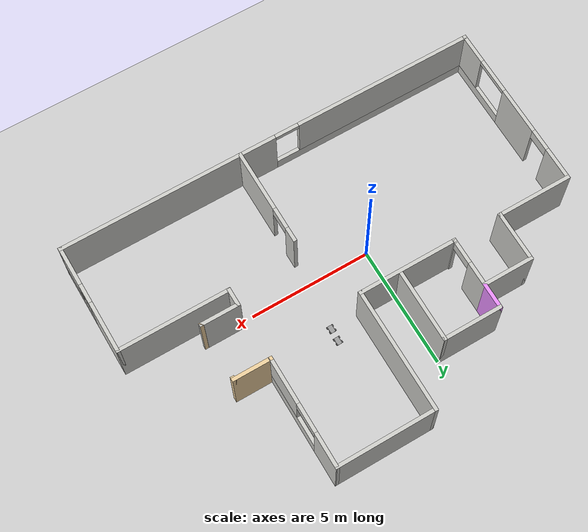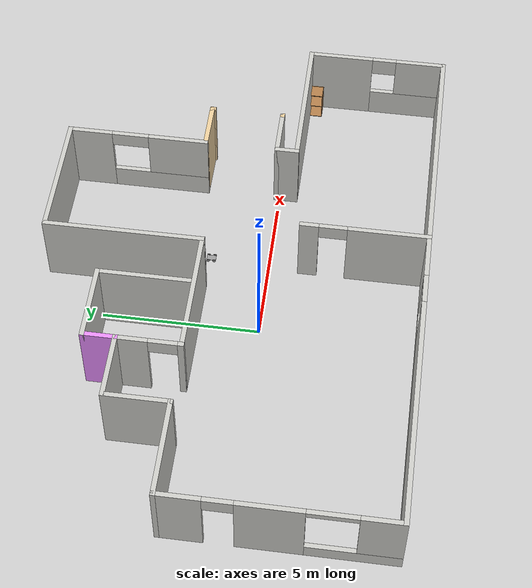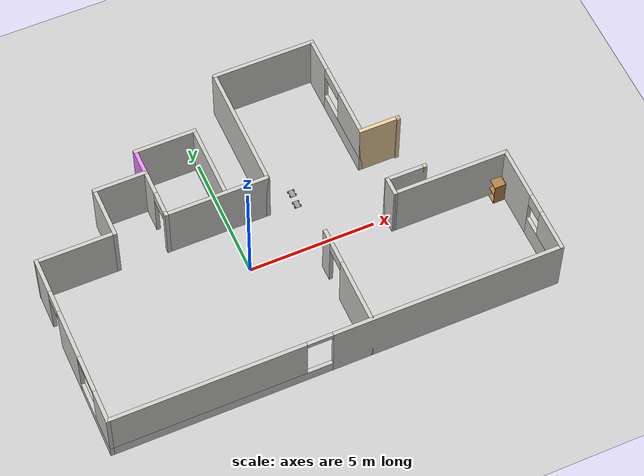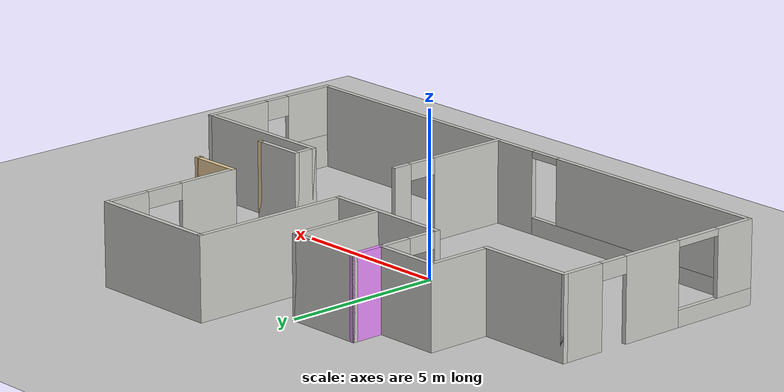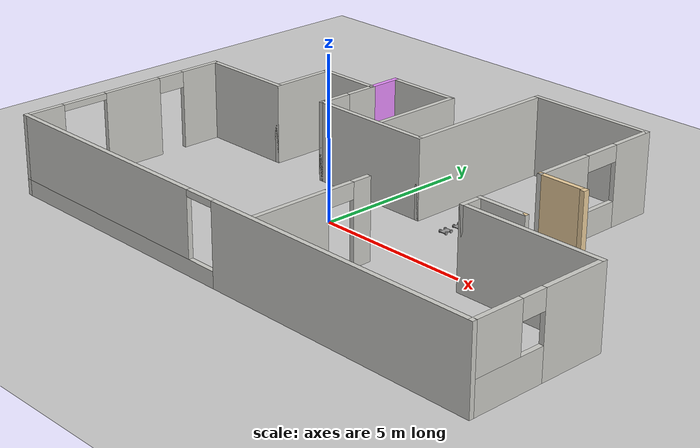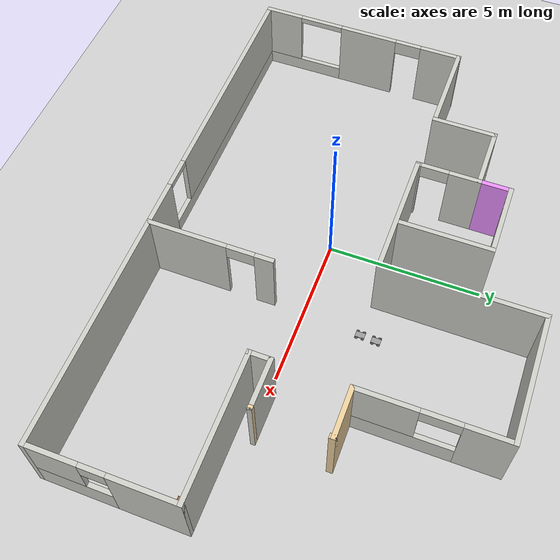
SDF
<sdf version="1.6">
 <world name="default">
  <plugin name="welcome_message" filename="libwelcome_message.so"/>
  <light name="sun" type="directional">
   <pose>0 0 10 0 -0 0</pose>
   <diffuse>0.8 0.8 0.8 1</diffuse>
   <specular>0.2 0.2 0.2 1</specular>
   <attenuation>
    <range>1000</range>
    <constant>0.9</constant>
    <linear>0.01</linear>
    <quadratic>0.001</quadratic>
   </attenuation>
   <direction>-0.5 0.1 -0.9</direction>
  </light>
  <model name="ground_plane">
   <static>1</static>
   <link name="link">
    <collision name="collision">
     <geometry><plane><normal>0 0 1</normal><size>100 100</size></plane></geometry>
     <surface><friction><ode><mu>100</mu><mu2>50</mu2></ode></friction></surface>
    </collision>
    <visual name="visual">
     <cast_shadows>0</cast_shadows>
     <geometry><plane><normal>0 0 1</normal><size>100 100</size></plane></geometry>
     <material>
      <script><uri>file://media/materials/scripts/gazebo.material</uri><name>Gazebo/Grey</name></script>
     </material>
    </visual>
   </link>
  </model>
  <gravity>0 0 -9.8</gravity>
  <magnetic_field>6e-06 2.3e-05 -4.2e-05</magnetic_field>
  <atmosphere type="adiabatic"/>
  <physics name="default_physics" default="0" type="ode">
   <max_step_size>0.001</max_step_size>
   <real_time_factor>1</real_time_factor>
   <real_time_update_rate>1000</real_time_update_rate>
  </physics>
  <scene><ambient>0.4 0.4 0.4 1</ambient><background>0.7 0.7 0.7 1</background><shadows>1</shadows></scene>
  <spherical_coordinates>
   <surface_model>EARTH_WGS84</surface_model>
   <latitude_deg>0</latitude_deg>
   <longitude_deg>0</longitude_deg>
   <elevation>0</elevation>
   <heading_deg>0</heading_deg>
  </spherical_coordinates>
  <model name="model">
   <pose>1.31572 0.98708 0 0 -0 0</pose>
   <link name="Wall_0">
    <collision name="Wall_0_Collision">
     <geometry><box><size>3.15 0.15 2.5</size></box></geometry>
     <pose>0 0 1.25 0 -0 0</pose>
    </collision>
    <visual name="Wall_0_Visual">
     <pose>0 0 1.25 0 -0 0</pose>
     <geometry><box><size>3.15 0.15 2.5</size></box></geometry>
     <material>
      <script><uri>file://media/materials/scripts/gazebo.material</uri><name>Gazebo/CeilingTiled</name></script>
      <ambient>0.921569 0.807843 0.615686 1</ambient>
     </material>
     <meta><layer>0</layer></meta>
    </visual>
    <pose>-7.25 1 0 0 -0 0</pose>
   </link>
   <link name="Wall_16">
    <collision name="Wall_16_Collision">
     <geometry><box><size>2.15 0.15 2.5</size></box></geometry>
     <pose>0 0 1.25 0 -0 0</pose>
    </collision>
    <visual name="Wall_16_Visual">
     <pose>0 0 1.25 0 -0 0</pose>
     <geometry><box><size>2.15 0.15 2.5</size></box></geometry>
     <material>
      <script><uri>file://media/materials/scripts/gazebo.material</uri><name>Gazebo/CeilingTiled</name></script>
      <ambient>0.921569 0.807843 0.615686 1</ambient>
     </material>
     <meta><layer>0</layer></meta>
    </visual>
    <pose>-5.75 2 0 0 -0 1.5708</pose>
   </link>
   <link name="Wall_18">
    <collision name="Wall_18_Collision">
     <geometry><box><size>2.15 0.15 2.5</size></box></geometry>
     <pose>0 0 1.25 0 -0 0</pose>
    </collision>
    <visual name="Wall_18_Visual">
     <pose>0 0 1.25 0 -0 0</pose>
     <geometry><box><size>2.15 0.15 2.5</size></box></geometry>
     <material>
      <script><uri>file://media/materials/scripts/gazebo.material</uri><name>Gazebo/CeilingTiled</name></script>
      <ambient>0.921569 0.807843 0.615686 1</ambient>
     </material>
     <meta><layer>0</layer></meta>
    </visual>
    <pose>-4.75 3 0 0 -0 0</pose>
   </link>
   <link name="Wall_20">
    <pose>-3.75 2 0 0 0 -1.5708</pose>
    <visual name="Wall_20_Visual_0">
     <pose>-0.547542 0 1.25 0 -0 0</pose>
     <geometry><box><size>1.05492 0.15 2.5</size></box></geometry>
     <material>
      <script><uri>file://media/materials/scripts/gazebo.material</uri><name>Gazebo/CeilingTiled</name></script>
      <ambient>0.921569 0.807843 0.615686 1</ambient>
     </material>
     <meta><layer>0</layer></meta>
    </visual>
    <collision name="Wall_20_Collision_0">
     <geometry><box><size>1.05492 0.15 2.5</size></box></geometry>
     <pose>-0.547542 0 1.25 0 -0 0</pose>
    </collision>
    <visual name="Wall_20_Visual_1">
     <pose>0.977458 0 1.25 0 -0 0</pose>
     <geometry><box><size>0.195085 0.15 2.5</size></box></geometry>
     <material>
      <script><uri>file://media/materials/scripts/gazebo.material</uri><name>Gazebo/CeilingTiled</name></script>
      <ambient>0.921569 0.807843 0.615686 1</ambient>
     </material>
     <meta><layer>0</layer></meta>
    </visual>
    <collision name="Wall_20_Collision_1">
     <geometry><box><size>0.195085 0.15 2.5</size></box></geometry>
     <pose>0.977458 0 1.25 0 -0 0</pose>
    </collision>
    <visual name="Wall_20_Visual_2">
     <pose>0.429915 0 2.25 0 -0 0</pose>
     <geometry><box><size>0.9 0.15 0.5</size></box></geometry>
     <material>
      <script><uri>file://media/materials/scripts/gazebo.material</uri><name>Gazebo/CeilingTiled</name></script>
      <ambient>0.921569 0.807843 0.615686 1</ambient>
     </material>
     <meta><layer>0</layer></meta>
    </visual>
    <collision name="Wall_20_Collision_2">
     <geometry><box><size>0.9 0.15 0.5</size></box></geometry>
     <pose>0.429915 0 2.25 0 -0 0</pose>
    </collision>
   </link>
   <link name="Wall_22">
    <collision name="Wall_22_Collision">
     <geometry><box><size>4.15 0.15 2.5</size></box></geometry>
     <pose>0 0 1.25 0 -0 0</pose>
    </collision>
    <visual name="Wall_22_Visual">
     <pose>0 0 1.25 0 -0 0</pose>
     <geometry><box><size>4.15 0.15 2.5</size></box></geometry>
     <material>
      <script><uri>file://media/materials/scripts/gazebo.material</uri><name>Gazebo/CeilingTiled</name></script>
      <ambient>0.921569 0.807843 0.615686 1</ambient>
     </material>
     <meta><layer>0</layer></meta>
    </visual>
    <pose>-1.75 1 0 0 -0 0</pose>
   </link>
   <link name="Wall_24">
    <collision name="Wall_24_Collision">
     <geometry><box><size>5.15 0.15 2.5</size></box></geometry>
     <pose>0 0 1.25 0 -0 0</pose>
    </collision>
    <visual name="Wall_24_Visual">
     <pose>0 0 1.25 0 -0 0</pose>
     <geometry><box><size>5.15 0.15 2.5</size></box></geometry>
     <material>
      <script><uri>file://media/materials/scripts/gazebo.material</uri><name>Gazebo/CeilingTiled</name></script>
      <ambient>0.921569 0.807843 0.615686 1</ambient>
     </material>
     <meta><layer>0</layer></meta>
    </visual>
    <pose>0.25 3.5 0 0 -0 1.5708</pose>
   </link>
   <link name="Wall_26">
    <collision name="Wall_26_Collision">
     <geometry><box><size>4.15 0.15 2.5</size></box></geometry>
     <pose>0 0 1.25 0 -0 0</pose>
    </collision>
    <visual name="Wall_26_Visual">
     <pose>0 0 1.25 0 -0 0</pose>
     <geometry><box><size>4.15 0.15 2.5</size></box></geometry>
     <material>
      <script><uri>file://media/materials/scripts/gazebo.material</uri><name>Gazebo/CeilingTiled</name></script>
      <ambient>0.921569 0.807843 0.615686 1</ambient>
     </material>
     <meta><layer>0</layer></meta>
    </visual>
    <pose>2.25 6 0 0 -0 0</pose>
   </link>
   <link name="Wall_28">
    <pose>4.25 3.75 0 0 0 -1.5708</pose>
    <visual name="Wall_28_Visual_0">
     <pose>-1.5875 0 1.25 0 -0 0</pose>
     <geometry><box><size>1.475 0.15 2.5</size></box></geometry>
     <material>
      <script><uri>file://media/materials/scripts/gazebo.material</uri><name>Gazebo/CeilingTiled</name></script>
      <ambient>0.921569 0.807843 0.615686 1</ambient>
     </material>
     <meta><layer>0</layer></meta>
    </visual>
    <collision name="Wall_28_Collision_0">
     <geometry><box><size>1.475 0.15 2.5</size></box></geometry>
     <pose>-1.5875 0 1.25 0 -0 0</pose>
    </collision>
    <visual name="Wall_28_Visual_1">
     <pose>0.7375 0 0.4 0 -0 0</pose>
     <geometry><box><size>3.175 0.15 0.8</size></box></geometry>
     <material>
      <script><uri>file://media/materials/scripts/gazebo.material</uri><name>Gazebo/CeilingTiled</name></script>
      <ambient>0.921569 0.807843 0.615686 1</ambient>
     </material>
     <meta><layer>0</layer></meta>
    </visual>
    <collision name="Wall_28_Collision_1">
     <geometry><box><size>3.175 0.15 0.8</size></box></geometry>
     <pose>0.7375 0 0.4 0 -0 0</pose>
    </collision>
    <visual name="Wall_28_Visual_2">
     <pose>1.3375 0 1.65 0 -0 0</pose>
     <geometry><box><size>1.975 0.15 1.7</size></box></geometry>
     <material>
      <script><uri>file://media/materials/scripts/gazebo.material</uri><name>Gazebo/CeilingTiled</name></script>
      <ambient>0.921569 0.807843 0.615686 1</ambient>
     </material>
     <meta><layer>0</layer></meta>
    </visual>
    <collision name="Wall_28_Collision_2">
     <geometry><box><size>1.975 0.15 1.7</size></box></geometry>
     <pose>1.3375 0 1.65 0 -0 0</pose>
    </collision>
    <visual name="Wall_28_Visual_3">
     <pose>-0.25 0 2.25 0 -0 0</pose>
     <geometry><box><size>1.2 0.15 0.5</size></box></geometry>
     <material>
      <script><uri>file://media/materials/scripts/gazebo.material</uri><name>Gazebo/CeilingTiled</name></script>
      <ambient>0.921569 0.807843 0.615686 1</ambient>
     </material>
     <meta><layer>0</layer></meta>
    </visual>
    <collision name="Wall_28_Collision_3">
     <geometry><box><size>1.2 0.15 0.5</size></box></geometry>
     <pose>-0.25 0 2.25 0 -0 0</pose>
    </collision>
   </link>
   <link name="Wall_30">
    <collision name="Wall_30_Collision">
     <geometry><box><size>1.65 0.15 2.5</size></box></geometry>
     <pose>0 0 1.25 0 -0 0</pose>
    </collision>
    <visual name="Wall_30_Visual">
     <pose>0 0 1.25 0 -0 0</pose>
     <geometry><box><size>1.65 0.15 2.5</size></box></geometry>
     <material>
      <script><uri>file://media/materials/scripts/gazebo.material</uri><name>Gazebo/Grey</name></script>
      <ambient>0.921569 0.807843 0.615686 1</ambient>
     </material>
     <meta><layer>0</layer></meta>
    </visual>
    <pose>5 1.5 0 0 -0 0</pose>
   </link>
   <link name="Wall_31">
    <pose>5.75 0.325 0 0 0 -1.5708</pose>
    <visual name="Wall_31_Visual_0">
     <pose>-1.15 0 1.25 0 -0 0</pose>
     <geometry><box><size>0.2 0.15 2.5</size></box></geometry>
     <material>
      <script><uri>file://media/materials/scripts/gazebo.material</uri><name>Gazebo/Grey</name></script>
      <ambient>0.921569 0.807843 0.615686 1</ambient>
     </material>
     <meta><layer>0</layer></meta>
    </visual>
    <collision name="Wall_31_Collision_0">
     <geometry><box><size>0.2 0.15 2.5</size></box></geometry>
     <pose>-1.15 0 1.25 0 -0 0</pose>
    </collision>
    <visual name="Wall_31_Visual_1">
     <pose>1.175 0 1.25 0 -0 0</pose>
     <geometry><box><size>0.15 0.15 2.5</size></box></geometry>
     <material>
      <script><uri>file://media/materials/scripts/gazebo.material</uri><name>Gazebo/Grey</name></script>
      <ambient>0.921569 0.807843 0.615686 1</ambient>
     </material>
     <meta><layer>0</layer></meta>
    </visual>
    <collision name="Wall_31_Collision_1">
     <geometry><box><size>0.15 0.15 2.5</size></box></geometry>
     <pose>1.175 0 1.25 0 -0 0</pose>
    </collision>
   </link>
   <link name="Wall_32">
    <collision name="Wall_32_Collision">
     <geometry><box><size>1.65 0.15 2.5</size></box></geometry>
     <pose>0 0 1.25 0 -0 0</pose>
    </collision>
    <visual name="Wall_32_Visual">
     <pose>0 0 1.25 0 -0 0</pose>
     <geometry><box><size>1.65 0.15 2.5</size></box></geometry>
     <material>
      <script><uri>file://media/materials/scripts/gazebo.material</uri><name>Gazebo/CeilingTiled</name></script>
      <ambient>0.921569 0.807843 0.615686 1</ambient>
     </material>
     <meta><layer>0</layer></meta>
    </visual>
    <pose>5 -0.85 0 0 -0 3.14159</pose>
   </link>
   <link name="Wall_34">
    <collision name="Wall_34_Collision">
     <geometry><box><size>0.8 0.15 2.5</size></box></geometry>
     <pose>0 0 1.25 0 -0 0</pose>
    </collision>
    <visual name="Wall_34_Visual">
     <pose>0 0 1.25 0 -0 0</pose>
     <geometry><box><size>0.8 0.15 2.5</size></box></geometry>
     <material>
      <script><uri>file://media/materials/scripts/gazebo.material</uri><name>Gazebo/CeilingTiled</name></script>
      <ambient>0.921569 0.807843 0.615686 1</ambient>
     </material>
     <meta><layer>0</layer></meta>
    </visual>
    <pose>4.25 -1.175 0 0 0 -1.5708</pose>
   </link>
   <link name="Wall_36">
    <collision name="Wall_36_Collision">
     <geometry><box><size>4.65 0.15 2.5</size></box></geometry>
     <pose>0 0 1.25 0 -0 0</pose>
    </collision>
    <visual name="Wall_36_Visual">
     <pose>0 0 1.25 0 -0 0</pose>
     <geometry><box><size>4.65 0.15 2.5</size></box></geometry>
     <material>
      <script><uri>file://media/materials/scripts/gazebo.material</uri><name>Gazebo/CeilingTiled</name></script>
      <ambient>0.921569 0.807843 0.615686 1</ambient>
     </material>
     <meta><layer>0</layer></meta>
    </visual>
    <pose>6.5 -1.5 0 0 -0 0</pose>
   </link>
   <link name="Wall_37">
    <pose>8.75 -3.75 0 0 0 -1.5708</pose>
    <visual name="Wall_37_Visual_0">
     <pose>-1.2375 0 1.25 0 -0 0</pose>
     <geometry><box><size>2.175 0.15 2.5</size></box></geometry>
     <material>
      <script><uri>file://media/materials/scripts/gazebo.material</uri><name>Gazebo/CeilingTiled</name></script>
      <ambient>0.921569 0.807843 0.615686 1</ambient>
     </material>
     <meta><layer>0</layer></meta>
    </visual>
    <collision name="Wall_37_Collision_0">
     <geometry><box><size>2.175 0.15 2.5</size></box></geometry>
     <pose>-1.2375 0 1.25 0 -0 0</pose>
    </collision>
    <visual name="Wall_37_Visual_1">
     <pose>1.0875 0 0.5 0 -0 0</pose>
     <geometry><box><size>2.475 0.15 1</size></box></geometry>
     <material>
      <script><uri>file://media/materials/scripts/gazebo.material</uri><name>Gazebo/CeilingTiled</name></script>
      <ambient>0.921569 0.807843 0.615686 1</ambient>
     </material>
     <meta><layer>0</layer></meta>
    </visual>
    <collision name="Wall_37_Collision_1">
     <geometry><box><size>2.475 0.15 1</size></box></geometry>
     <pose>1.0875 0 0.5 0 -0 0</pose>
    </collision>
    <visual name="Wall_37_Visual_2">
     <pose>1.4875 0 1.75 0 -0 0</pose>
     <geometry><box><size>1.675 0.15 1.5</size></box></geometry>
     <material>
      <script><uri>file://media/materials/scripts/gazebo.material</uri><name>Gazebo/CeilingTiled</name></script>
      <ambient>0.921569 0.807843 0.615686 1</ambient>
     </material>
     <meta><layer>0</layer></meta>
    </visual>
    <collision name="Wall_37_Collision_2">
     <geometry><box><size>1.675 0.15 1.5</size></box></geometry>
     <pose>1.4875 0 1.75 0 -0 0</pose>
    </collision>
    <visual name="Wall_37_Visual_3">
     <pose>0.25 0 2.2 0 -0 0</pose>
     <geometry><box><size>0.8 0.15 0.6</size></box></geometry>
     <material>
      <script><uri>file://media/materials/scripts/gazebo.material</uri><name>Gazebo/CeilingTiled</name></script>
      <ambient>0.921569 0.807843 0.615686 1</ambient>
     </material>
     <meta><layer>0</layer></meta>
    </visual>
    <collision name="Wall_37_Collision_3">
     <geometry><box><size>0.8 0.15 0.6</size></box></geometry>
     <pose>0.25 0 2.2 0 -0 0</pose>
    </collision>
   </link>
   <link name="Wall_38">
    <pose>0 -6 0 0 -0 3.14159</pose>
    <visual name="Wall_38_Visual_0">
     <pose>-4.2875 0 1.25 0 -0 0</pose>
     <geometry><box><size>9.075 0.15 2.5</size></box></geometry>
     <material>
      <script><uri>file://media/materials/scripts/gazebo.material</uri><name>Gazebo/CeilingTiled</name></script>
      <ambient>0.921569 0.807843 0.615686 1</ambient>
     </material>
     <meta><layer>0</layer></meta>
    </visual>
    <collision name="Wall_38_Collision_0">
     <geometry><box><size>9.075 0.15 2.5</size></box></geometry>
     <pose>-4.2875 0 1.25 0 -0 0</pose>
    </collision>
    <visual name="Wall_38_Visual_1">
     <pose>4.5375 0 0.25 0 -0 0</pose>
     <geometry><box><size>8.575 0.15 0.5</size></box></geometry>
     <material>
      <script><uri>file://media/materials/scripts/gazebo.material</uri><name>Gazebo/CeilingTiled</name></script>
      <ambient>0.921569 0.807843 0.615686 1</ambient>
     </material>
     <meta><layer>0</layer></meta>
    </visual>
    <collision name="Wall_38_Collision_1">
     <geometry><box><size>8.575 0.15 0.5</size></box></geometry>
     <pose>4.5375 0 0.25 0 -0 0</pose>
    </collision>
    <visual name="Wall_38_Visual_2">
     <pose>5.0375 0 1.5 0 -0 0</pose>
     <geometry><box><size>7.575 0.15 2</size></box></geometry>
     <material>
      <script><uri>file://media/materials/scripts/gazebo.material</uri><name>Gazebo/CeilingTiled</name></script>
      <ambient>0.921569 0.807843 0.615686 1</ambient>
     </material>
     <meta><layer>0</layer></meta>
    </visual>
    <collision name="Wall_38_Collision_2">
     <geometry><box><size>7.575 0.15 2</size></box></geometry>
     <pose>5.0375 0 1.5 0 -0 0</pose>
    </collision>
    <visual name="Wall_38_Visual_3">
     <pose>0.75 0 2.4 0 -0 0</pose>
     <geometry><box><size>1 0.15 0.2</size></box></geometry>
     <material>
      <script><uri>file://media/materials/scripts/gazebo.material</uri><name>Gazebo/CeilingTiled</name></script>
      <ambient>0.921569 0.807843 0.615686 1</ambient>
     </material>
     <meta><layer>0</layer></meta>
    </visual>
    <collision name="Wall_38_Collision_3">
     <geometry><box><size>1 0.15 0.2</size></box></geometry>
     <pose>0.75 0 2.4 0 -0 0</pose>
    </collision>
   </link>
   <link name="Wall_40">
    <pose>-8.75 -2.5 0 0 0 -1.5708</pose>
    <visual name="Wall_40_Visual_0">
     <pose>-2.8625 0 1.25 0 -0 0</pose>
     <geometry><box><size>1.425 0.15 2.5</size></box></geometry>
     <material>
      <script><uri>file://media/materials/scripts/gazebo.material</uri><name>Gazebo/CeilingTiled</name></script>
      <ambient>0.921569 0.807843 0.615686 1</ambient>
     </material>
     <meta><layer>0</layer></meta>
    </visual>
    <collision name="Wall_40_Collision_0">
     <geometry><box><size>1.425 0.15 2.5</size></box></geometry>
     <pose>-2.8625 0 1.25 0 -0 0</pose>
    </collision>
    <visual name="Wall_40_Visual_1">
     <pose>-0.25 0 1.25 0 -0 0</pose>
     <geometry><box><size>2 0.15 2.5</size></box></geometry>
     <material>
      <script><uri>file://media/materials/scripts/gazebo.material</uri><name>Gazebo/CeilingTiled</name></script>
      <ambient>0.921569 0.807843 0.615686 1</ambient>
     </material>
     <meta><layer>0</layer></meta>
    </visual>
    <collision name="Wall_40_Collision_1">
     <geometry><box><size>2 0.15 2.5</size></box></geometry>
     <pose>-0.25 0 1.25 0 -0 0</pose>
    </collision>
    <visual name="Wall_40_Visual_2">
     <pose>2.1625 0 0.25 0 -0 0</pose>
     <geometry><box><size>2.825 0.15 0.5</size></box></geometry>
     <material>
      <script><uri>file://media/materials/scripts/gazebo.material</uri><name>Gazebo/CeilingTiled</name></script>
      <ambient>0.921569 0.807843 0.615686 1</ambient>
     </material>
     <meta><layer>0</layer></meta>
    </visual>
    <collision name="Wall_40_Collision_2">
     <geometry><box><size>2.825 0.15 0.5</size></box></geometry>
     <pose>2.1625 0 0.25 0 -0 0</pose>
    </collision>
    <visual name="Wall_40_Visual_3">
     <pose>2.9125 0 1.5 0 -0 0</pose>
     <geometry><box><size>1.325 0.15 2</size></box></geometry>
     <material>
      <script><uri>file://media/materials/scripts/gazebo.material</uri><name>Gazebo/CeilingTiled</name></script>
      <ambient>0.921569 0.807843 0.615686 1</ambient>
     </material>
     <meta><layer>0</layer></meta>
    </visual>
    <collision name="Wall_40_Collision_3">
     <geometry><box><size>1.325 0.15 2</size></box></geometry>
     <pose>2.9125 0 1.5 0 -0 0</pose>
    </collision>
    <visual name="Wall_40_Visual_4">
     <pose>-1.7 0 2.25 0 -0 0</pose>
     <geometry><box><size>0.9 0.15 0.5</size></box></geometry>
     <material>
      <script><uri>file://media/materials/scripts/gazebo.material</uri><name>Gazebo/CeilingTiled</name></script>
      <ambient>0.921569 0.807843 0.615686 1</ambient>
     </material>
     <meta><layer>0</layer></meta>
    </visual>
    <collision name="Wall_40_Collision_4">
     <geometry><box><size>0.9 0.15 0.5</size></box></geometry>
     <pose>-1.7 0 2.25 0 -0 0</pose>
    </collision>
    <visual name="Wall_40_Visual_5">
     <pose>1.5 0 2.4 0 -0 0</pose>
     <geometry><box><size>1.5 0.15 0.2</size></box></geometry>
     <material>
      <script><uri>file://media/materials/scripts/gazebo.material</uri><name>Gazebo/CeilingTiled</name></script>
      <ambient>0.921569 0.807843 0.615686 1</ambient>
     </material>
     <meta><layer>0</layer></meta>
    </visual>
    <collision name="Wall_40_Collision_5">
     <geometry><box><size>1.5 0.15 0.2</size></box></geometry>
     <pose>1.5 0 2.4 0 -0 0</pose>
    </collision>
   </link>
   <link name="Wall_42">
    <pose>1.25 -4 0 0 -0 1.5708</pose>
    <visual name="Wall_42_Visual_0">
     <pose>-0.758578 0 1.25 0 -0 0</pose>
     <geometry><box><size>2.63284 0.15 2.5</size></box></geometry>
     <material>
      <script><uri>file://media/materials/scripts/gazebo.material</uri><name>Gazebo/CeilingTiled</name></script>
      <ambient>0.921569 0.807843 0.615686 1</ambient>
     </material>
     <meta><layer>0</layer></meta>
    </visual>
    <collision name="Wall_42_Collision_0">
     <geometry><box><size>2.63284 0.15 2.5</size></box></geometry>
     <pose>-0.758578 0 1.25 0 -0 0</pose>
    </collision>
    <visual name="Wall_42_Visual_1">
     <pose>1.76642 0 1.25 0 -0 0</pose>
     <geometry><box><size>0.617156 0.15 2.5</size></box></geometry>
     <material>
      <script><uri>file://media/materials/scripts/gazebo.material</uri><name>Gazebo/CeilingTiled</name></script>
      <ambient>0.921569 0.807843 0.615686 1</ambient>
     </material>
     <meta><layer>0</layer></meta>
    </visual>
    <collision name="Wall_42_Collision_1">
     <geometry><box><size>0.617156 0.15 2.5</size></box></geometry>
     <pose>1.76642 0 1.25 0 -0 0</pose>
    </collision>
    <visual name="Wall_42_Visual_2">
     <pose>1.00784 0 2.25 0 -0 0</pose>
     <geometry><box><size>0.9 0.15 0.5</size></box></geometry>
     <material>
      <script><uri>file://media/materials/scripts/gazebo.material</uri><name>Gazebo/CeilingTiled</name></script>
      <ambient>0.921569 0.807843 0.615686 1</ambient>
     </material>
     <meta><layer>0</layer></meta>
    </visual>
    <collision name="Wall_42_Collision_2">
     <geometry><box><size>0.9 0.15 0.5</size></box></geometry>
     <pose>1.00784 0 2.25 0 -0 0</pose>
    </collision>
   </link>
   <link name="Wall_47">
    <collision name="Wall_47_Collision">
     <geometry><box><size>3 0.15 2.5</size></box></geometry>
     <pose>0 0 1.25 0 -0 0</pose>
    </collision>
    <visual name="Wall_47_Visual">
     <pose>0 0 1.25 0 -0 0</pose>
     <geometry><box><size>3 0.15 2.5</size></box></geometry>
     <material>
      <script><uri>file://media/materials/scripts/gazebo.material</uri><name>Gazebo/CeilingTiled</name></script>
      <ambient>0.913725 0.556863 1 1</ambient>
     </material>
     <meta><layer>0</layer></meta>
    </visual>
    <pose>-1.4 2.575 0 0 0 -1.5708</pose>
   </link>
   <link name="Wall_49">
    <collision name="Wall_49_Collision">
     <geometry><box><size>1.15 0.15 2.5</size></box></geometry>
     <pose>0 0 1.25 0 -0 0</pose>
    </collision>
    <visual name="Wall_49_Visual">
     <pose>0 0 1.25 0 -0 0</pose>
     <geometry><box><size>1.15 0.15 2.5</size></box></geometry>
     <material>
      <script><uri>file://media/materials/scripts/gazebo.material</uri><name>Gazebo/Grey</name></script>
      <ambient>0.913725 0.556863 1 1</ambient>
     </material>
     <meta><layer>0</layer></meta>
    </visual>
    <pose>-3.75 3.5 0 0 -0 1.5708</pose>
   </link>
   <link name="Wall_50">
    <collision name="Wall_50_Collision">
     <geometry><box><size>2.5 0.15 2.5</size></box></geometry>
     <pose>0 0 1.25 0 -0 0</pose>
    </collision>
    <visual name="Wall_50_Visual">
     <pose>0 0 1.25 0 -0 0</pose>
     <geometry><box><size>2.5 0.15 2.5</size></box></geometry>
     <material>
      <script><uri>file://media/materials/scripts/gazebo.material</uri><name>Gazebo/CeilingTiled</name></script>
      <ambient>0.913725 0.556863 1 1</ambient>
     </material>
     <meta><layer>0</layer></meta>
    </visual>
    <pose>-2.575 4 0 0 -0 0</pose>
   </link>
   <static>1</static>
  </model>
  <model name="cabinet">
   <static>1</static>
   <link name="cabinet_bottom_plate">
    <inertial>
     <pose>0 0 -1 0 -0 0</pose>
     <inertia><ixx>2.05</ixx><ixy>0</ixy><ixz>0</ixz><iyy>2.05</iyy><iyz>0</iyz><izz>2.05</izz></inertia>
     <mass>25</mass>
    </inertial>
    <collision name="cabinet_bottom_plate_geom">
     <pose>0 0 0.01 0 -0 0</pose>
     <geometry><box><size>0.45 0.45 0.02</size></box></geometry>
    </collision>
    <visual name="cabinet_bottom_plate_geom_visual">
     <pose>0 0 0.01 0 -0 0</pose>
     <geometry><box><size>0.45 0.45 0.02</size></box></geometry>
     <material>
      <script><uri>file://media/materials/scripts/gazebo.material</uri><name>Gazebo/Wood</name></script>
     </material>
    </visual>
    <collision name="cabinet_bottom_plate_geom_cabinet_back_plate">
     <pose>0.235 0 0.51 0 -0 0</pose>
     <geometry><box><size>0.02 0.45 1.02</size></box></geometry>
    </collision>
    <visual name="cabinet_bottom_plate_geom_cabinet_back_plate_visual">
     <pose>0.235 0 0.51 0 -0 0</pose>
     <geometry><box><size>0.02 0.45 1.02</size></box></geometry>
     <material>
      <script><uri>file://media/materials/scripts/gazebo.material</uri><name>Gazebo/Wood</name></script>
     </material>
    </visual>
    <collision name="cabinet_bottom_plate_geom_cabinet_left_plate">
     <pose>0 0.235 0.51 0 -0 0</pose>
     <geometry><box><size>0.45 0.02 1.02</size></box></geometry>
    </collision>
    <visual name="cabinet_bottom_plate_geom_cabinet_left_plate_visual">
     <pose>0 0.235 0.51 0 -0 0</pose>
     <geometry><box><size>0.45 0.02 1.02</size></box></geometry>
     <material>
      <script><uri>file://media/materials/scripts/gazebo.material</uri><name>Gazebo/Wood</name></script>
     </material>
    </visual>
    <collision name="cabinet_bottom_plate_geom_cabinet_middle_plate">
     <pose>0 0 0.51 0 -0 0</pose>
     <geometry><box><size>0.45 0.45 0.02</size></box></geometry>
    </collision>
    <visual name="cabinet_bottom_plate_geom_cabinet_middle_plate_visual">
     <pose>0 0 0.51 0 -0 0</pose>
     <geometry><box><size>0.45 0.45 0.02</size></box></geometry>
     <material>
      <script><uri>file://media/materials/scripts/gazebo.material</uri><name>Gazebo/Wood</name></script>
     </material>
    </visual>
    <collision name="cabinet_bottom_plate_geom_cabinet_right_plate">
     <pose>0 -0.235 0.51 0 -0 0</pose>
     <geometry><box><size>0.45 0.02 1.02</size></box></geometry>
    </collision>
    <visual name="cabinet_bottom_plate_geom_cabinet_right_plate_visual">
     <pose>0 -0.235 0.51 0 -0 0</pose>
     <geometry><box><size>0.45 0.02 1.02</size></box></geometry>
     <material>
      <script><uri>file://media/materials/scripts/gazebo.material</uri><name>Gazebo/Wood</name></script>
     </material>
    </visual>
    <collision name="cabinet_bottom_plate_geom_cabinet_top_plate">
     <pose>0 0 1.01 0 -0 0</pose>
     <geometry><box><size>0.45 0.45 0.02</size></box></geometry>
    </collision>
    <visual name="cabinet_bottom_plate_geom_cabinet_top_plate_visual">
     <pose>0 0 1.01 0 -0 0</pose>
     <geometry><box><size>0.45 0.45 0.02</size></box></geometry>
     <material>
      <script><uri>file://media/materials/scripts/gazebo.material</uri><name>Gazebo/Wood</name></script>
     </material>
    </visual>
   </link>
   <pose>9.73279 -0.752046 0 0 -0 0</pose>
  </model>
  <model name="model_0">
   <link name="link_0">
    <pose>1e-06 0 -4.6e-05 0 -0 0</pose>
    <inertial>
     <mass>1</mass>
     <inertia>
      <ixx>0.166667</ixx>
      <ixy>0</ixy>
      <ixz>0</ixz>
      <iyy>0.166667</iyy>
      <iyz>0</iyz>
      <izz>0.166667</izz>
     </inertia>
    </inertial>
    <visual name="visual">
     <geometry><box><size>0.2 0.3 0.02</size></box></geometry>
     <material>
      <lighting>1</lighting>
      <script><uri>file://media/materials/scripts/gazebo.material</uri><name>Gazebo/Grey</name></script>
      <shader type="pixel"><normal_map>__default__</normal_map></shader>
      <ambient>0.3 0.3 0.3 1</ambient>
      <diffuse>0.7 0.7 0.7 1</diffuse>
      <specular>0.01 0.01 0.01 1</specular>
      <emissive>0 0 0 1</emissive>
     </material>
    </visual>
    <collision name="collision">
     <geometry><box><size>0.2 0.3 0.02</size></box></geometry>
     <surface>
      <friction>
       <ode><mu>1</mu><mu2>1</mu2><fdir1>0 0 0</fdir1><slip1>0</slip1><slip2>0</slip2></ode>
       <torsional>
        <coefficient>1</coefficient>
        <patch_radius>0</patch_radius>
        <surface_radius>0</surface_radius>
        <use_patch_radius>1</use_patch_radius>
        <ode><slip>0</slip></ode>
       </torsional>
      </friction>
      <bounce><restitution_coefficient>0</restitution_coefficient><threshold>1e+06</threshold></bounce>
      <contact>
       <collide_without_contact>0</collide_without_contact>
       <collide_without_contact_bitmask>1</collide_without_contact_bitmask>
       <collide_bitmask>1</collide_bitmask>
       <ode>
        <soft_cfm>0</soft_cfm>
        <soft_erp>0.2</soft_erp>
        <kp>1e+13</kp>
        <kd>1</kd>
        <max_vel>0.01</max_vel>
        <min_depth>0</min_depth>
       </ode>
       <bullet>
        <split_impulse>1</split_impulse>
        <split_impulse_penetration_threshold>-0.01</split_impulse_penetration_threshold>
        <soft_cfm>0</soft_cfm>
        <soft_erp>0.2</soft_erp>
        <kp>1e+13</kp>
        <kd>1</kd>
       </bullet>
      </contact>
     </surface>
    </collision>
   </link>
   <link name="link_3">
    <pose>-0.114999 -0.1 -4.6e-05 0 1.5707 0</pose>
    <inertial>
     <mass>1</mass>
     <inertia><ixx>0.145833</ixx><ixy>0</ixy><ixz>0</ixz><iyy>0.145833</iyy><iyz>0</iyz><izz>0.125</izz></inertia>
    </inertial>
    <visual name="visual">
     <geometry><cylinder><radius>0.05</radius><length>0.03</length></cylinder></geometry>
     <material>
      <lighting>1</lighting>
      <script><uri>file://media/materials/scripts/gazebo.material</uri><name>Gazebo/Grey</name></script>
      <shader type="pixel"><normal_map>__default__</normal_map></shader>
      <ambient>0.3 0.3 0.3 1</ambient>
      <diffuse>0.7 0.7 0.7 1</diffuse>
      <specular>0.01 0.01 0.01 1</specular>
      <emissive>0 0 0 1</emissive>
     </material>
    </visual>
    <collision name="collision">
     <geometry><cylinder><radius>0.05</radius><length>0.03</length></cylinder></geometry>
     <surface>
      <friction>
       <ode><mu>1</mu><mu2>1</mu2><fdir1>0 0 0</fdir1><slip1>0</slip1><slip2>0</slip2></ode>
       <torsional>
        <coefficient>1</coefficient>
        <patch_radius>0</patch_radius>
        <surface_radius>0</surface_radius>
        <use_patch_radius>1</use_patch_radius>
        <ode><slip>0</slip></ode>
       </torsional>
      </friction>
      <bounce><restitution_coefficient>0</restitution_coefficient><threshold>1e+06</threshold></bounce>
      <contact>
       <collide_without_contact>0</collide_without_contact>
       <collide_without_contact_bitmask>1</collide_without_contact_bitmask>
       <collide_bitmask>1</collide_bitmask>
       <ode>
        <soft_cfm>0</soft_cfm>
        <soft_erp>0.2</soft_erp>
        <kp>1e+13</kp>
        <kd>1</kd>
        <max_vel>0.01</max_vel>
        <min_depth>0</min_depth>
       </ode>
       <bullet>
        <split_impulse>1</split_impulse>
        <split_impulse_penetration_threshold>-0.01</split_impulse_penetration_threshold>
        <soft_cfm>0</soft_cfm>
        <soft_erp>0.2</soft_erp>
        <kp>1e+13</kp>
        <kd>1</kd>
       </bullet>
      </contact>
     </surface>
    </collision>
   </link>
   <link name="link_3_clone">
    <pose>0.115001 -0.1 7.9e-05 0 1.5707 0</pose>
    <inertial>
     <mass>1</mass>
     <inertia><ixx>0.145833</ixx><ixy>0</ixy><ixz>0</ixz><iyy>0.145833</iyy><iyz>0</iyz><izz>0.125</izz></inertia>
    </inertial>
    <visual name="visual">
     <geometry><cylinder><radius>0.05</radius><length>0.03</length></cylinder></geometry>
     <material>
      <lighting>1</lighting>
      <script><uri>file://media/materials/scripts/gazebo.material</uri><name>Gazebo/Grey</name></script>
      <shader type="pixel"><normal_map>__default__</normal_map></shader>
      <ambient>0.3 0.3 0.3 1</ambient>
      <diffuse>0.7 0.7 0.7 1</diffuse>
      <specular>0.01 0.01 0.01 1</specular>
      <emissive>0 0 0 1</emissive>
     </material>
    </visual>
    <collision name="collision">
     <geometry><cylinder><radius>0.05</radius><length>0.03</length></cylinder></geometry>
     <surface>
      <friction>
       <ode><mu>1</mu><mu2>1</mu2><fdir1>0 0 0</fdir1><slip1>0</slip1><slip2>0</slip2></ode>
       <torsional>
        <coefficient>1</coefficient>
        <patch_radius>0</patch_radius>
        <surface_radius>0</surface_radius>
        <use_patch_radius>1</use_patch_radius>
        <ode><slip>0</slip></ode>
       </torsional>
      </friction>
      <bounce><restitution_coefficient>0</restitution_coefficient><threshold>1e+06</threshold></bounce>
      <contact>
       <collide_without_contact>0</collide_without_contact>
       <collide_without_contact_bitmask>1</collide_without_contact_bitmask>
       <collide_bitmask>1</collide_bitmask>
       <ode>
        <soft_cfm>0</soft_cfm>
        <soft_erp>0.2</soft_erp>
        <kp>1e+13</kp>
        <kd>1</kd>
        <max_vel>0.01</max_vel>
        <min_depth>0</min_depth>
       </ode>
       <bullet>
        <split_impulse>1</split_impulse>
        <split_impulse_penetration_threshold>-0.01</split_impulse_penetration_threshold>
        <soft_cfm>0</soft_cfm>
        <soft_erp>0.2</soft_erp>
        <kp>1e+13</kp>
        <kd>1</kd>
       </bullet>
      </contact>
     </surface>
    </collision>
   </link>
   <link name="link_3_clone_clone">
    <pose>-0.114999 0.1 -4.1e-05 0 1.5707 0</pose>
    <inertial>
     <mass>1</mass>
     <inertia><ixx>0.145833</ixx><ixy>0</ixy><ixz>0</ixz><iyy>0.145833</iyy><iyz>0</iyz><izz>0.125</izz></inertia>
    </inertial>
    <visual name="visual">
     <geometry><cylinder><radius>0.05</radius><length>0.03</length></cylinder></geometry>
     <material>
      <lighting>1</lighting>
      <script><uri>file://media/materials/scripts/gazebo.material</uri><name>Gazebo/Grey</name></script>
      <shader type="pixel"><normal_map>__default__</normal_map></shader>
      <ambient>0.3 0.3 0.3 1</ambient>
      <diffuse>0.7 0.7 0.7 1</diffuse>
      <specular>0.01 0.01 0.01 1</specular>
      <emissive>0 0 0 1</emissive>
     </material>
    </visual>
    <collision name="collision">
     <geometry><cylinder><radius>0.05</radius><length>0.03</length></cylinder></geometry>
     <surface>
      <friction>
       <ode><mu>1</mu><mu2>1</mu2><fdir1>0 0 0</fdir1><slip1>0</slip1><slip2>0</slip2></ode>
       <torsional>
        <coefficient>1</coefficient>
        <patch_radius>0</patch_radius>
        <surface_radius>0</surface_radius>
        <use_patch_radius>1</use_patch_radius>
        <ode><slip>0</slip></ode>
       </torsional>
      </friction>
      <bounce><restitution_coefficient>0</restitution_coefficient><threshold>1e+06</threshold></bounce>
      <contact>
       <collide_without_contact>0</collide_without_contact>
       <collide_without_contact_bitmask>1</collide_without_contact_bitmask>
       <collide_bitmask>1</collide_bitmask>
       <ode>
        <soft_cfm>0</soft_cfm>
        <soft_erp>0.2</soft_erp>
        <kp>1e+13</kp>
        <kd>1</kd>
        <max_vel>0.01</max_vel>
        <min_depth>0</min_depth>
       </ode>
       <bullet>
        <split_impulse>1</split_impulse>
        <split_impulse_penetration_threshold>-0.01</split_impulse_penetration_threshold>
        <soft_cfm>0</soft_cfm>
        <soft_erp>0.2</soft_erp>
        <kp>1e+13</kp>
        <kd>1</kd>
       </bullet>
      </contact>
     </surface>
    </collision>
   </link>
   <link name="link_3_clone_clone_0">
    <pose>0.115001 0.1 5.4e-05 0 1.5707 0</pose>
    <inertial>
     <mass>1</mass>
     <inertia><ixx>0.145833</ixx><ixy>0</ixy><ixz>0</ixz><iyy>0.145833</iyy><iyz>0</iyz><izz>0.125</izz></inertia>
    </inertial>
    <visual name="visual">
     <geometry><cylinder><radius>0.05</radius><length>0.03</length></cylinder></geometry>
     <material>
      <lighting>1</lighting>
      <script><uri>file://media/materials/scripts/gazebo.material</uri><name>Gazebo/Grey</name></script>
      <shader type="pixel"><normal_map>__default__</normal_map></shader>
      <ambient>0.3 0.3 0.3 1</ambient>
      <diffuse>0.7 0.7 0.7 1</diffuse>
      <specular>0.01 0.01 0.01 1</specular>
      <emissive>0 0 0 1</emissive>
     </material>
    </visual>
    <collision name="collision">
     <geometry><cylinder><radius>0.05</radius><length>0.03</length></cylinder></geometry>
     <surface>
      <friction>
       <ode><mu>1</mu><mu2>1</mu2><fdir1>0 0 0</fdir1><slip1>0</slip1><slip2>0</slip2></ode>
       <torsional>
        <coefficient>1</coefficient>
        <patch_radius>0</patch_radius>
        <surface_radius>0</surface_radius>
        <use_patch_radius>1</use_patch_radius>
        <ode><slip>0</slip></ode>
       </torsional>
      </friction>
      <bounce><restitution_coefficient>0</restitution_coefficient><threshold>1e+06</threshold></bounce>
      <contact>
       <collide_without_contact>0</collide_without_contact>
       <collide_without_contact_bitmask>1</collide_without_contact_bitmask>
       <collide_bitmask>1</collide_bitmask>
       <ode>
        <soft_cfm>0</soft_cfm>
        <soft_erp>0.2</soft_erp>
        <kp>1e+13</kp>
        <kd>1</kd>
        <max_vel>0.01</max_vel>
        <min_depth>0</min_depth>
       </ode>
       <bullet>
        <split_impulse>1</split_impulse>
        <split_impulse_penetration_threshold>-0.01</split_impulse_penetration_threshold>
        <soft_cfm>0</soft_cfm>
        <soft_erp>0.2</soft_erp>
        <kp>1e+13</kp>
        <kd>1</kd>
       </bullet>
      </contact>
     </surface>
    </collision>
   </link>
   <joint name="link_0_JOINT_10" type="revolute">
    <parent>link_0</parent>
    <child>link_3_clone</child>
    <axis>
     <xyz>0 0 1</xyz>
     <use_parent_model_frame>0</use_parent_model_frame>
     <limit>
      <lower>-1.79769e+308</lower>
      <upper>1.79769e+308</upper>
      <effort>-1</effort>
      <velocity>-1</velocity>
     </limit>
     <dynamics>
      <spring_reference>0</spring_reference>
      <spring_stiffness>0</spring_stiffness>
      <damping>0</damping>
     </dynamics>
    </axis>
    <physics>
     <ode><limit><cfm>0</cfm><erp>0.2</erp></limit><suspension><cfm>0</cfm><erp>0.2</erp></suspension></ode>
    </physics>
   </joint>
   <joint name="link_0_JOINT_11" type="revolute">
    <parent>link_0</parent>
    <child>link_3_clone_clone_0</child>
    <axis>
     <xyz>1 0 0</xyz>
     <use_parent_model_frame>0</use_parent_model_frame>
     <limit>
      <lower>-1.79769e+308</lower>
      <upper>1.79769e+308</upper>
      <effort>-1</effort>
      <velocity>-1</velocity>
     </limit>
     <dynamics>
      <spring_reference>0</spring_reference>
      <spring_stiffness>0</spring_stiffness>
      <damping>0</damping>
     </dynamics>
    </axis>
    <physics>
     <ode><limit><cfm>0</cfm><erp>0.2</erp></limit><suspension><cfm>0</cfm><erp>0.2</erp></suspension></ode>
    </physics>
   </joint>
   <joint name="link_0_JOINT_7" type="revolute">
    <parent>link_0</parent>
    <child>link_3</child>
    <axis>
     <xyz>0 0 1</xyz>
     <use_parent_model_frame>0</use_parent_model_frame>
     <limit>
      <lower>-1.79769e+308</lower>
      <upper>1.79769e+308</upper>
      <effort>-1</effort>
      <velocity>-1</velocity>
     </limit>
     <dynamics>
      <spring_reference>0</spring_reference>
      <spring_stiffness>0</spring_stiffness>
      <damping>0</damping>
     </dynamics>
    </axis>
    <physics>
     <ode><limit><cfm>0</cfm><erp>0.2</erp></limit><suspension><cfm>0</cfm><erp>0.2</erp></suspension></ode>
    </physics>
   </joint>
   <joint name="link_0_JOINT_8" type="revolute">
    <parent>link_0</parent>
    <child>link_3_clone_clone</child>
    <axis>
     <xyz>0 0 1</xyz>
     <use_parent_model_frame>0</use_parent_model_frame>
     <limit>
      <lower>-1.79769e+308</lower>
      <upper>1.79769e+308</upper>
      <effort>-1</effort>
      <velocity>-1</velocity>
     </limit>
     <dynamics>
      <spring_reference>0</spring_reference>
      <spring_stiffness>0</spring_stiffness>
      <damping>0</damping>
     </dynamics>
    </axis>
    <physics>
     <ode><limit><cfm>0</cfm><erp>0.2</erp></limit><suspension><cfm>0</cfm><erp>0.2</erp></suspension></ode>
    </physics>
   </joint>
   <static>0</static>
   <pose>2.71841 1.9189 0.05 -2.3e-05 0.000423 0.014134</pose>
  </model>
  <model name="model_1">
   <link name="link_0">
    <pose>1e-06 0 -4.6e-05 0 -0 0</pose>
    <inertial>
     <mass>1</mass>
     <inertia>
      <ixx>0.166667</ixx>
      <ixy>0</ixy>
      <ixz>0</ixz>
      <iyy>0.166667</iyy>
      <iyz>0</iyz>
      <izz>0.166667</izz>
     </inertia>
    </inertial>
    <visual name="visual">
     <geometry><box><size>0.2 0.3 0.02</size></box></geometry>
     <material>
      <lighting>1</lighting>
      <script><uri>file://media/materials/scripts/gazebo.material</uri><name>Gazebo/Grey</name></script>
      <shader type="pixel"><normal_map>__default__</normal_map></shader>
      <ambient>0.3 0.3 0.3 1</ambient>
      <diffuse>0.7 0.7 0.7 1</diffuse>
      <specular>0.01 0.01 0.01 1</specular>
      <emissive>0 0 0 1</emissive>
     </material>
    </visual>
    <collision name="collision">
     <geometry><box><size>0.2 0.3 0.02</size></box></geometry>
     <surface>
      <friction>
       <ode><mu>1</mu><mu2>1</mu2><fdir1>0 0 0</fdir1><slip1>0</slip1><slip2>0</slip2></ode>
       <torsional>
        <coefficient>1</coefficient>
        <patch_radius>0</patch_radius>
        <surface_radius>0</surface_radius>
        <use_patch_radius>1</use_patch_radius>
        <ode><slip>0</slip></ode>
       </torsional>
      </friction>
      <bounce><restitution_coefficient>0</restitution_coefficient><threshold>1e+06</threshold></bounce>
      <contact>
       <collide_without_contact>0</collide_without_contact>
       <collide_without_contact_bitmask>1</collide_without_contact_bitmask>
       <collide_bitmask>1</collide_bitmask>
       <ode>
        <soft_cfm>0</soft_cfm>
        <soft_erp>0.2</soft_erp>
        <kp>1e+13</kp>
        <kd>1</kd>
        <max_vel>0.01</max_vel>
        <min_depth>0</min_depth>
       </ode>
       <bullet>
        <split_impulse>1</split_impulse>
        <split_impulse_penetration_threshold>-0.01</split_impulse_penetration_threshold>
        <soft_cfm>0</soft_cfm>
        <soft_erp>0.2</soft_erp>
        <kp>1e+13</kp>
        <kd>1</kd>
       </bullet>
      </contact>
     </surface>
    </collision>
   </link>
   <link name="link_3">
    <pose>-0.114999 -0.1 -4.6e-05 0 1.5707 0</pose>
    <inertial>
     <mass>1</mass>
     <inertia><ixx>0.145833</ixx><ixy>0</ixy><ixz>0</ixz><iyy>0.145833</iyy><iyz>0</iyz><izz>0.125</izz></inertia>
    </inertial>
    <visual name="visual">
     <geometry><cylinder><radius>0.05</radius><length>0.03</length></cylinder></geometry>
     <material>
      <lighting>1</lighting>
      <script><uri>file://media/materials/scripts/gazebo.material</uri><name>Gazebo/Grey</name></script>
      <shader type="pixel"><normal_map>__default__</normal_map></shader>
      <ambient>0.3 0.3 0.3 1</ambient>
      <diffuse>0.7 0.7 0.7 1</diffuse>
      <specular>0.01 0.01 0.01 1</specular>
      <emissive>0 0 0 1</emissive>
     </material>
    </visual>
    <collision name="collision">
     <geometry><cylinder><radius>0.05</radius><length>0.03</length></cylinder></geometry>
     <surface>
      <friction>
       <ode><mu>1</mu><mu2>1</mu2><fdir1>0 0 0</fdir1><slip1>0</slip1><slip2>0</slip2></ode>
       <torsional>
        <coefficient>1</coefficient>
        <patch_radius>0</patch_radius>
        <surface_radius>0</surface_radius>
        <use_patch_radius>1</use_patch_radius>
        <ode><slip>0</slip></ode>
       </torsional>
      </friction>
      <bounce><restitution_coefficient>0</restitution_coefficient><threshold>1e+06</threshold></bounce>
      <contact>
       <collide_without_contact>0</collide_without_contact>
       <collide_without_contact_bitmask>1</collide_without_contact_bitmask>
       <collide_bitmask>1</collide_bitmask>
       <ode>
        <soft_cfm>0</soft_cfm>
        <soft_erp>0.2</soft_erp>
        <kp>1e+13</kp>
        <kd>1</kd>
        <max_vel>0.01</max_vel>
        <min_depth>0</min_depth>
       </ode>
       <bullet>
        <split_impulse>1</split_impulse>
        <split_impulse_penetration_threshold>-0.01</split_impulse_penetration_threshold>
        <soft_cfm>0</soft_cfm>
        <soft_erp>0.2</soft_erp>
        <kp>1e+13</kp>
        <kd>1</kd>
       </bullet>
      </contact>
     </surface>
    </collision>
   </link>
   <link name="link_3_clone">
    <pose>0.115001 -0.1 7.9e-05 0 1.5707 0</pose>
    <inertial>
     <mass>1</mass>
     <inertia><ixx>0.145833</ixx><ixy>0</ixy><ixz>0</ixz><iyy>0.145833</iyy><iyz>0</iyz><izz>0.125</izz></inertia>
    </inertial>
    <visual name="visual">
     <geometry><cylinder><radius>0.05</radius><length>0.03</length></cylinder></geometry>
     <material>
      <lighting>1</lighting>
      <script><uri>file://media/materials/scripts/gazebo.material</uri><name>Gazebo/Grey</name></script>
      <shader type="pixel"><normal_map>__default__</normal_map></shader>
      <ambient>0.3 0.3 0.3 1</ambient>
      <diffuse>0.7 0.7 0.7 1</diffuse>
      <specular>0.01 0.01 0.01 1</specular>
      <emissive>0 0 0 1</emissive>
     </material>
    </visual>
    <collision name="collision">
     <geometry><cylinder><radius>0.05</radius><length>0.03</length></cylinder></geometry>
     <surface>
      <friction>
       <ode><mu>1</mu><mu2>1</mu2><fdir1>0 0 0</fdir1><slip1>0</slip1><slip2>0</slip2></ode>
       <torsional>
        <coefficient>1</coefficient>
        <patch_radius>0</patch_radius>
        <surface_radius>0</surface_radius>
        <use_patch_radius>1</use_patch_radius>
        <ode><slip>0</slip></ode>
       </torsional>
      </friction>
      <bounce><restitution_coefficient>0</restitution_coefficient><threshold>1e+06</threshold></bounce>
      <contact>
       <collide_without_contact>0</collide_without_contact>
       <collide_without_contact_bitmask>1</collide_without_contact_bitmask>
       <collide_bitmask>1</collide_bitmask>
       <ode>
        <soft_cfm>0</soft_cfm>
        <soft_erp>0.2</soft_erp>
        <kp>1e+13</kp>
        <kd>1</kd>
        <max_vel>0.01</max_vel>
        <min_depth>0</min_depth>
       </ode>
       <bullet>
        <split_impulse>1</split_impulse>
        <split_impulse_penetration_threshold>-0.01</split_impulse_penetration_threshold>
        <soft_cfm>0</soft_cfm>
        <soft_erp>0.2</soft_erp>
        <kp>1e+13</kp>
        <kd>1</kd>
       </bullet>
      </contact>
     </surface>
    </collision>
   </link>
   <link name="link_3_clone_clone">
    <pose>-0.114999 0.1 -4.1e-05 0 1.5707 0</pose>
    <inertial>
     <mass>1</mass>
     <inertia><ixx>0.145833</ixx><ixy>0</ixy><ixz>0</ixz><iyy>0.145833</iyy><iyz>0</iyz><izz>0.125</izz></inertia>
    </inertial>
    <visual name="visual">
     <geometry><cylinder><radius>0.05</radius><length>0.03</length></cylinder></geometry>
     <material>
      <lighting>1</lighting>
      <script><uri>file://media/materials/scripts/gazebo.material</uri><name>Gazebo/Grey</name></script>
      <shader type="pixel"><normal_map>__default__</normal_map></shader>
      <ambient>0.3 0.3 0.3 1</ambient>
      <diffuse>0.7 0.7 0.7 1</diffuse>
      <specular>0.01 0.01 0.01 1</specular>
      <emissive>0 0 0 1</emissive>
     </material>
    </visual>
    <collision name="collision">
     <geometry><cylinder><radius>0.05</radius><length>0.03</length></cylinder></geometry>
     <surface>
      <friction>
       <ode><mu>1</mu><mu2>1</mu2><fdir1>0 0 0</fdir1><slip1>0</slip1><slip2>0</slip2></ode>
       <torsional>
        <coefficient>1</coefficient>
        <patch_radius>0</patch_radius>
        <surface_radius>0</surface_radius>
        <use_patch_radius>1</use_patch_radius>
        <ode><slip>0</slip></ode>
       </torsional>
      </friction>
      <bounce><restitution_coefficient>0</restitution_coefficient><threshold>1e+06</threshold></bounce>
      <contact>
       <collide_without_contact>0</collide_without_contact>
       <collide_without_contact_bitmask>1</collide_without_contact_bitmask>
       <collide_bitmask>1</collide_bitmask>
       <ode>
        <soft_cfm>0</soft_cfm>
        <soft_erp>0.2</soft_erp>
        <kp>1e+13</kp>
        <kd>1</kd>
        <max_vel>0.01</max_vel>
        <min_depth>0</min_depth>
       </ode>
       <bullet>
        <split_impulse>1</split_impulse>
        <split_impulse_penetration_threshold>-0.01</split_impulse_penetration_threshold>
        <soft_cfm>0</soft_cfm>
        <soft_erp>0.2</soft_erp>
        <kp>1e+13</kp>
        <kd>1</kd>
       </bullet>
      </contact>
     </surface>
    </collision>
   </link>
   <link name="link_3_clone_clone_0">
    <pose>0.115001 0.1 5.4e-05 0 1.5707 0</pose>
    <inertial>
     <mass>1</mass>
     <inertia><ixx>0.145833</ixx><ixy>0</ixy><ixz>0</ixz><iyy>0.145833</iyy><iyz>0</iyz><izz>0.125</izz></inertia>
    </inertial>
    <visual name="visual">
     <geometry><cylinder><radius>0.05</radius><length>0.03</length></cylinder></geometry>
     <material>
      <lighting>1</lighting>
      <script><uri>file://media/materials/scripts/gazebo.material</uri><name>Gazebo/Grey</name></script>
      <shader type="pixel"><normal_map>__default__</normal_map></shader>
      <ambient>0.3 0.3 0.3 1</ambient>
      <diffuse>0.7 0.7 0.7 1</diffuse>
      <specular>0.01 0.01 0.01 1</specular>
      <emissive>0 0 0 1</emissive>
     </material>
    </visual>
    <collision name="collision">
     <geometry><cylinder><radius>0.05</radius><length>0.03</length></cylinder></geometry>
     <surface>
      <friction>
       <ode><mu>1</mu><mu2>1</mu2><fdir1>0 0 0</fdir1><slip1>0</slip1><slip2>0</slip2></ode>
       <torsional>
        <coefficient>1</coefficient>
        <patch_radius>0</patch_radius>
        <surface_radius>0</surface_radius>
        <use_patch_radius>1</use_patch_radius>
        <ode><slip>0</slip></ode>
       </torsional>
      </friction>
      <bounce><restitution_coefficient>0</restitution_coefficient><threshold>1e+06</threshold></bounce>
      <contact>
       <collide_without_contact>0</collide_without_contact>
       <collide_without_contact_bitmask>1</collide_without_contact_bitmask>
       <collide_bitmask>1</collide_bitmask>
       <ode>
        <soft_cfm>0</soft_cfm>
        <soft_erp>0.2</soft_erp>
        <kp>1e+13</kp>
        <kd>1</kd>
        <max_vel>0.01</max_vel>
        <min_depth>0</min_depth>
       </ode>
       <bullet>
        <split_impulse>1</split_impulse>
        <split_impulse_penetration_threshold>-0.01</split_impulse_penetration_threshold>
        <soft_cfm>0</soft_cfm>
        <soft_erp>0.2</soft_erp>
        <kp>1e+13</kp>
        <kd>1</kd>
       </bullet>
      </contact>
     </surface>
    </collision>
   </link>
   <joint name="link_0_JOINT_10" type="revolute">
    <parent>link_0</parent>
    <child>link_3_clone</child>
    <axis>
     <xyz>0 0 1</xyz>
     <use_parent_model_frame>0</use_parent_model_frame>
     <limit>
      <lower>-1.79769e+308</lower>
      <upper>1.79769e+308</upper>
      <effort>-1</effort>
      <velocity>-1</velocity>
     </limit>
     <dynamics>
      <spring_reference>0</spring_reference>
      <spring_stiffness>0</spring_stiffness>
      <damping>0</damping>
     </dynamics>
    </axis>
    <physics>
     <ode><limit><cfm>0</cfm><erp>0.2</erp></limit><suspension><cfm>0</cfm><erp>0.2</erp></suspension></ode>
    </physics>
   </joint>
   <joint name="link_0_JOINT_11" type="revolute">
    <parent>link_0</parent>
    <child>link_3_clone_clone_0</child>
    <axis>
     <xyz>1 0 0</xyz>
     <use_parent_model_frame>0</use_parent_model_frame>
     <limit>
      <lower>-1.79769e+308</lower>
      <upper>1.79769e+308</upper>
      <effort>-1</effort>
      <velocity>-1</velocity>
     </limit>
     <dynamics>
      <spring_reference>0</spring_reference>
      <spring_stiffness>0</spring_stiffness>
      <damping>0</damping>
     </dynamics>
    </axis>
    <physics>
     <ode><limit><cfm>0</cfm><erp>0.2</erp></limit><suspension><cfm>0</cfm><erp>0.2</erp></suspension></ode>
    </physics>
   </joint>
   <joint name="link_0_JOINT_7" type="revolute">
    <parent>link_0</parent>
    <child>link_3</child>
    <axis>
     <xyz>0 0 1</xyz>
     <use_parent_model_frame>0</use_parent_model_frame>
     <limit>
      <lower>-1.79769e+308</lower>
      <upper>1.79769e+308</upper>
      <effort>-1</effort>
      <velocity>-1</velocity>
     </limit>
     <dynamics>
      <spring_reference>0</spring_reference>
      <spring_stiffness>0</spring_stiffness>
      <damping>0</damping>
     </dynamics>
    </axis>
    <physics>
     <ode><limit><cfm>0</cfm><erp>0.2</erp></limit><suspension><cfm>0</cfm><erp>0.2</erp></suspension></ode>
    </physics>
   </joint>
   <joint name="link_0_JOINT_8" type="revolute">
    <parent>link_0</parent>
    <child>link_3_clone_clone</child>
    <axis>
     <xyz>0 0 1</xyz>
     <use_parent_model_frame>0</use_parent_model_frame>
     <limit>
      <lower>-1.79769e+308</lower>
      <upper>1.79769e+308</upper>
      <effort>-1</effort>
      <velocity>-1</velocity>
     </limit>
     <dynamics>
      <spring_reference>0</spring_reference>
      <spring_stiffness>0</spring_stiffness>
      <damping>0</damping>
     </dynamics>
    </axis>
    <physics>
     <ode><limit><cfm>0</cfm><erp>0.2</erp></limit><suspension><cfm>0</cfm><erp>0.2</erp></suspension></ode>
    </physics>
   </joint>
   <static>0</static>
   <pose>2.74471 2.43899 0.05 -2.3e-05 0.000422 0.015387</pose>
  </model>
 </world>
</sdf>
